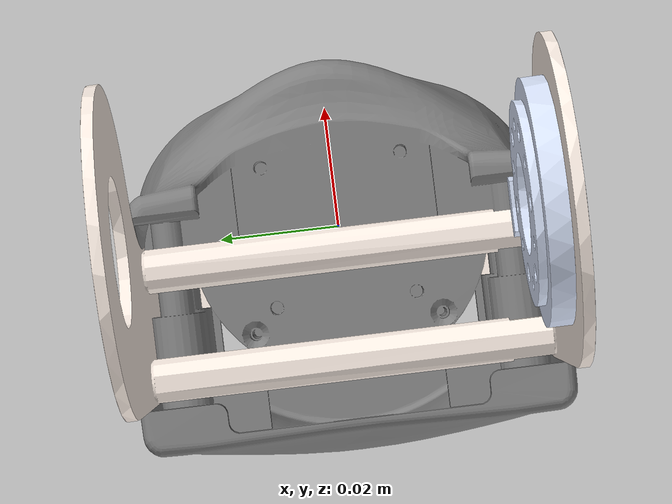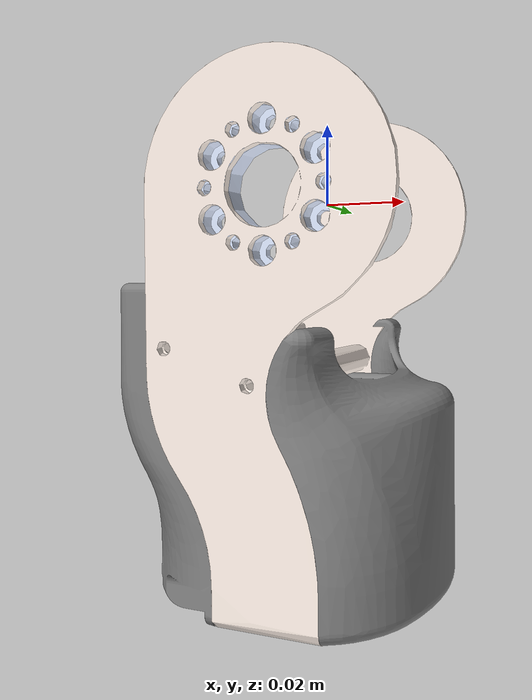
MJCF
<mujoco model="link4_obj">
  <asset>
    <mesh name="link4_00" file="link4_00.obj"/>
    <mesh name="link4_01" file="link4_01.obj"/>
    <mesh name="link4_02" file="link4_02.obj"/>
    <material name="link4_00_mat" rgba="0.501961 0.501961 0.501961 1.000000"/>
    <material name="link4_01_mat" rgba="0.866667 0.909804 1.000000 1.000000"/>
    <material name="link4_02_mat" rgba="1.000000 0.949020 0.909804 1.000000"/>
  </asset>
  <worldbody>
    <body name="link4_obj">
      <geom type="mesh" mesh="link4_00" material="link4_00_mat" contype="0" conaffinity="0" group="1"/>
      <geom type="mesh" mesh="link4_01" material="link4_01_mat" contype="0" conaffinity="0" group="1"/>
      <geom type="mesh" mesh="link4_02" material="link4_02_mat" contype="0" conaffinity="0" group="1"/>
    </body>
  </worldbody>
</mujoco>
